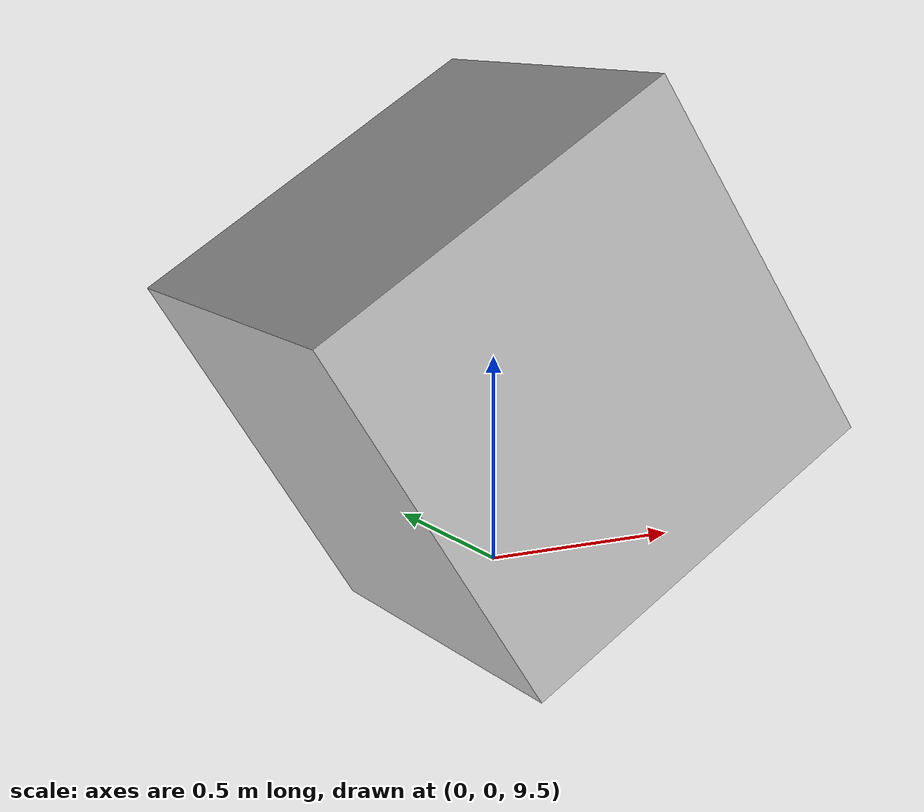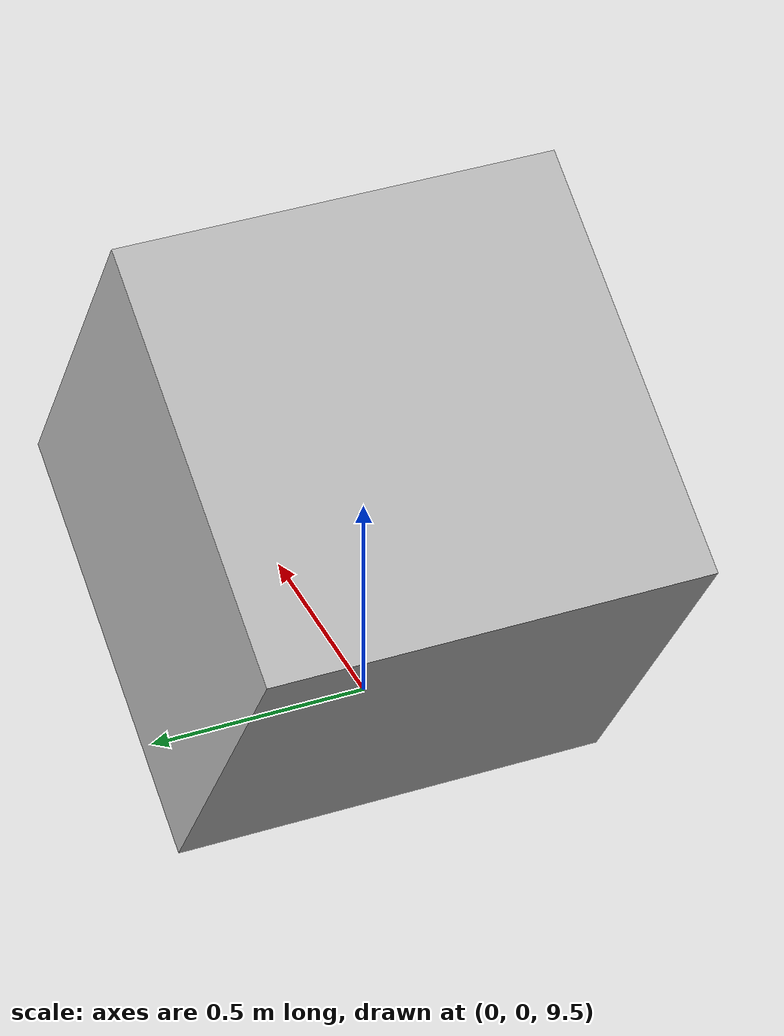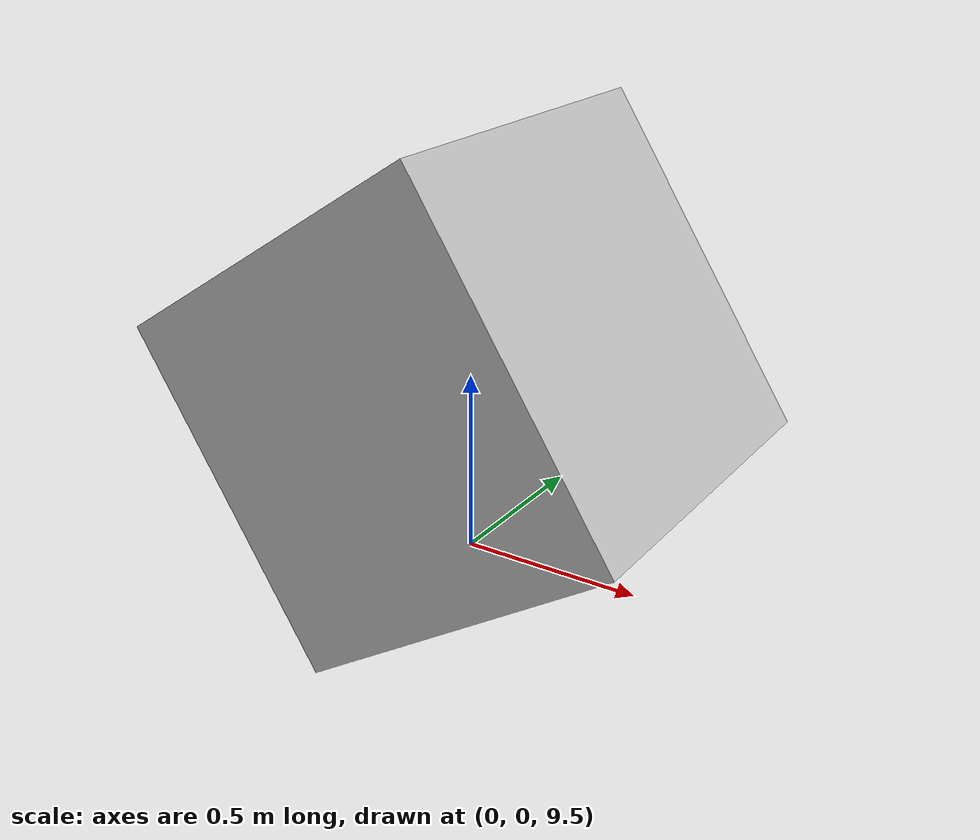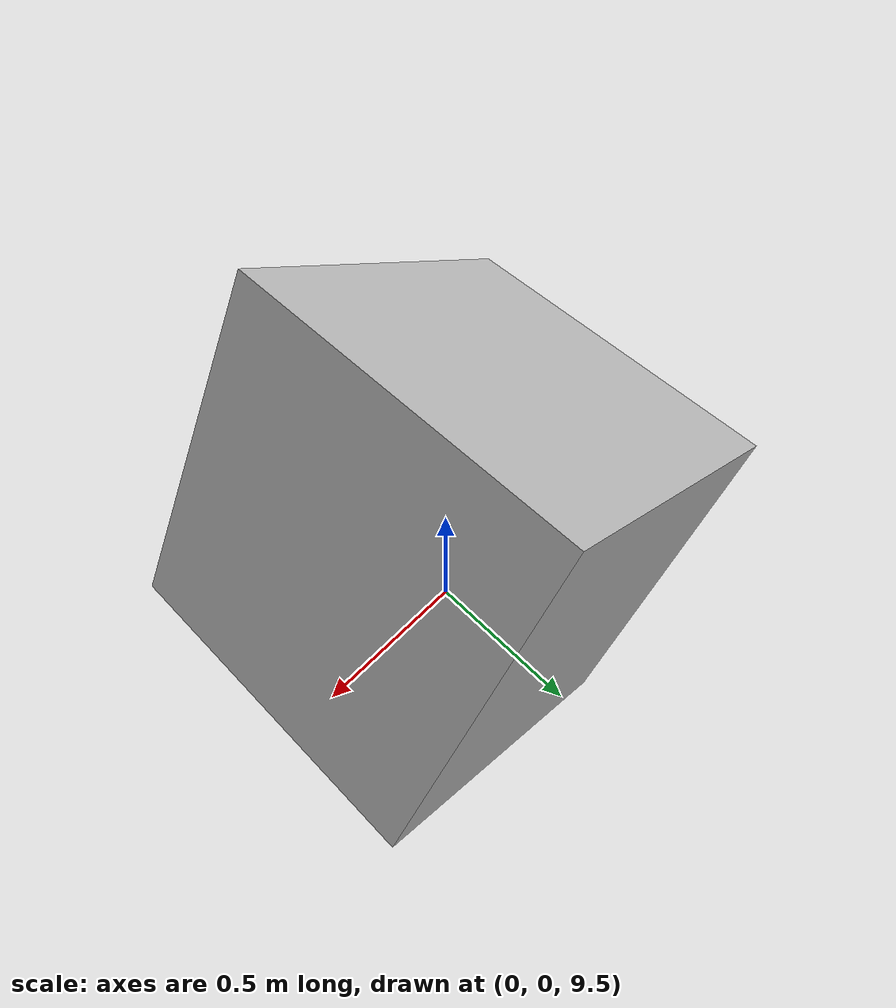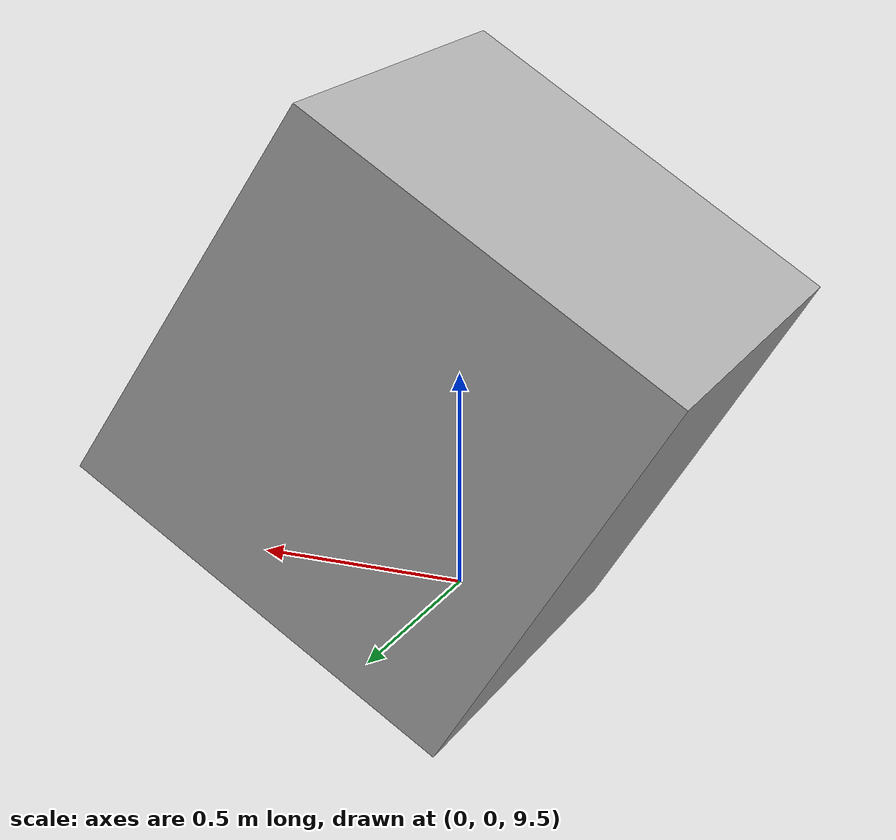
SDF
<?xml version="1.0" ?>
<sdf version="1.6">
  <model name="Photo_graduation">
    <link name="link">
      <pose>0 0 10 0 1 0</pose>
      <collision name="collision">
        <geometry>
          <box>
            <size>1 1 1</size>
          </box>
        </geometry>
      </collision>
      <visual name="visual">
        <geometry>
          <box>
            <size>1 1 1</size>
          </box>
        </geometry>
        <material>
          <script>
            <uri>model://photo_graduation/materials/scripts</uri>
            <uri>model://photo_graduation/materials/textures</uri>
            <name>Photo/Graduation</name>
          </script>
        </material>
      </visual>
    </link>
  </model>
</sdf>
